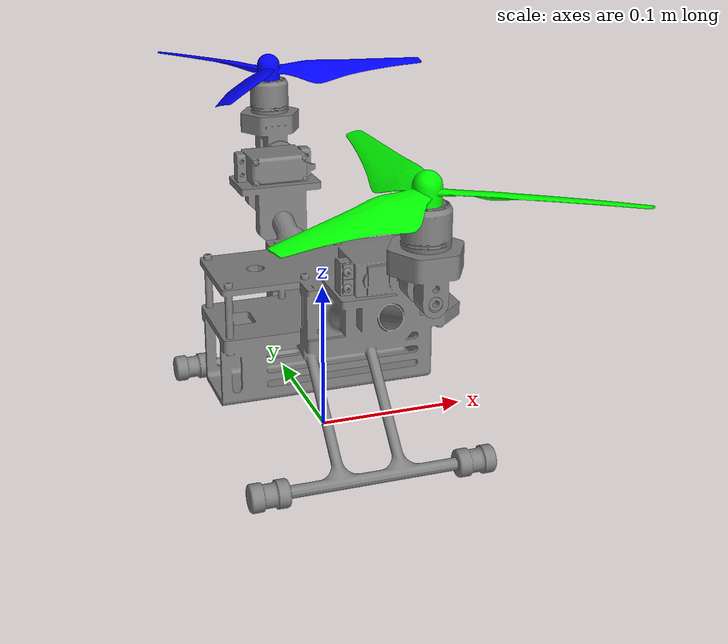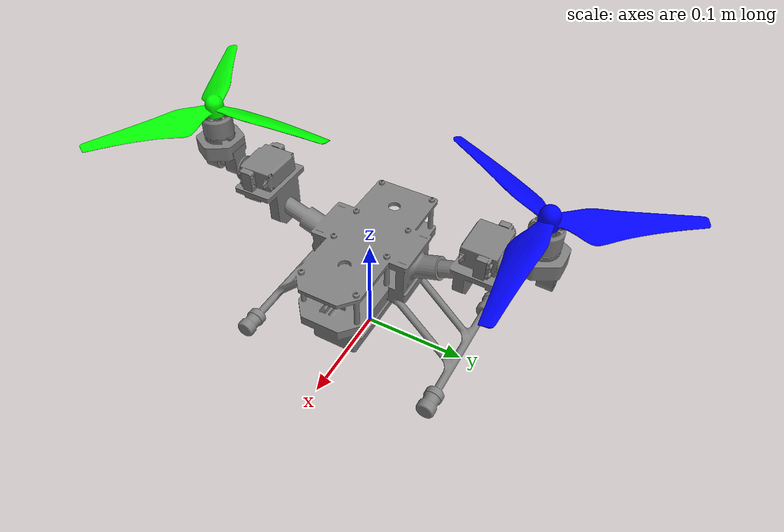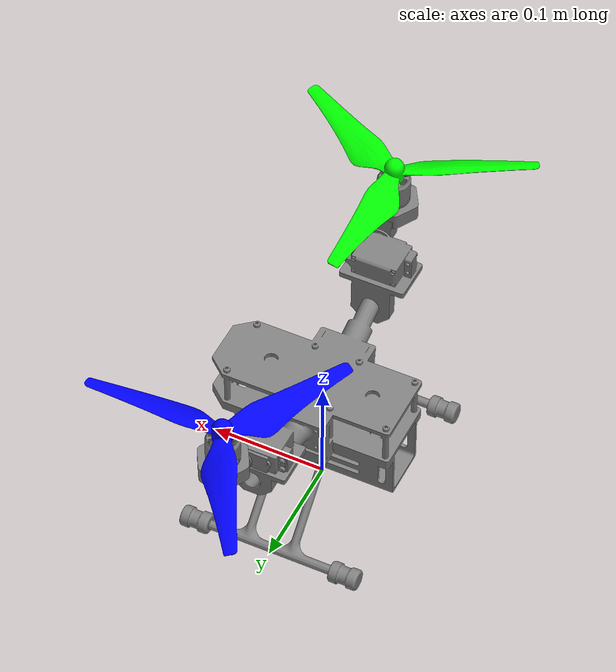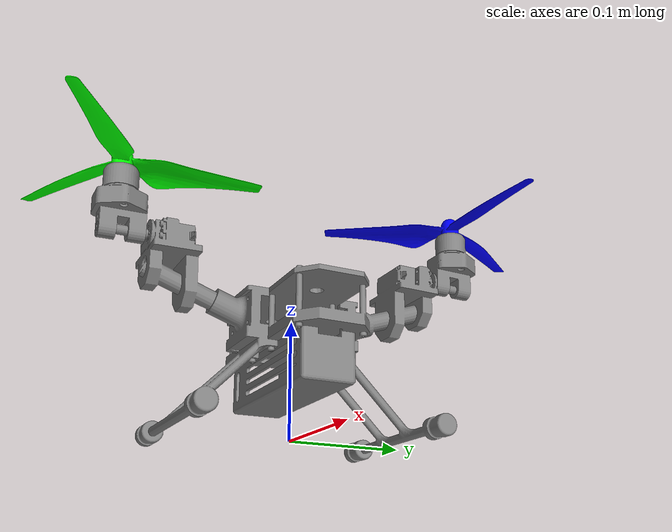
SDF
<?xml version="1.0"?>
<sdf version="1.9">
  <model name="bicopter">
    <pose>0 0 0 0 0 0</pose>
    <link name="base_link">
      <inertial>
        <pose>0.0047 0 0.08 0 0 0</pose>
        <mass>0.40</mass>
        <inertia>
          <ixx>0.000813333</ixx>
          <ixy>0</ixy>
          <ixz>0</ixz>
          <iyy>0.001186667</iyy>
          <iyz>0</iyz>
          <izz>0.001333333</izz>
        </inertia>
      </inertial>
      <sensor name="magnetometer_sensor" type="magnetometer">
        <pose>0 0 0.08 0 0 0</pose>
        <always_on>1</always_on>
        <update_rate>50</update_rate>
      </sensor>
      <sensor name="navsat_sensor" type="gps">
        <pose>0 0 0.08 0 0 0</pose>
        <always_on>1</always_on>
        <update_rate>10</update_rate>
        <gps>
          <position_sdn_stddev>0.0001 0.0001 0.0001</position_sdn_stddev>
          <velocity_sdn_stddev>0.01 0.01 0.01</velocity_sdn_stddev>
          <satellites_visible>10</satellites_visible>
        </gps>
      </sensor>
      <collision name="collision">
        <geometry>
          <mesh>
            <scale>1 1 1</scale>
            <uri>model://bicopter/meshes/base.stl</uri>
          </mesh>
        </geometry>
        <!--
          Collision approximation:
        -->
        <surface>
          <friction>
            <ode>
              <mu>1.0</mu>
              <mu2>1.0</mu2>
            </ode>
          </friction>
        </surface>
      </collision>
      <visual name="visual">
        <geometry>
          <mesh>
            <scale>1 1 1</scale>
            <uri>model://bicopter/meshes/base.stl</uri>
          </mesh>
        </geometry>
        <material>
          <ambient>0.5 0.5 0.5 1</ambient>
          <diffuse>0.5 0.5 0.5 1</diffuse>
          <specular>0.1 0.1 0.1 1</specular>
        </material>
      </visual>
    </link>

    <!-- left servo (ccw) -->
    <link name="ccw_servo_link">
      <pose relative_to="ccw_servo_joint">0 0 0 0 0 0</pose>
      <inertial>
        <pose>0 0 0 0 0 0</pose>
        <mass>0.050</mass>
        <inertia>
          <ixx>8.33333E-06</ixx>
          <ixy>0</ixy>
          <ixz>0</ixz>
          <iyy>5.41667E-06</iyy>
          <iyz>0</iyz>
          <izz>1.04167E-05</izz>
        </inertia>
      </inertial>
      <collision name="collision">
        <geometry>
          <mesh>
            <scale>1 1 1</scale>
            <uri>model://bicopter/meshes/ccw_servo.stl</uri>
          </mesh>
        </geometry>
      </collision>
      <visual name="visual">
        <geometry>
          <mesh>
            <scale>1 1 1</scale>
            <uri>model://bicopter/meshes/ccw_servo.stl</uri>
          </mesh>
        </geometry>
        <material>
          <ambient>0.5 0.5 0.5</ambient>
          <diffuse>0.5 0.5 0.5</diffuse>
          <specular>0.1 0.1 0.1 1</specular>
        </material>
      </visual>
    </link>
    <joint name="ccw_servo_joint" type="revolute">
      <pose relative_to="base_link">0.010312 0.15468 0.15176 0.018488 0 3.14159</pose>
      <parent>base_link</parent>
      <child>ccw_servo_link</child>
      <axis>
        <xyz>0 -1 0</xyz>
        <limit>
          <lower>-0.785398163</lower>
          <upper>0.785398163</upper>
        </limit>
        <dynamics>
          <damping>0.01</damping>
        </dynamics>
      </axis>
    </joint>

    <!-- left motor (ccw) -->
    <link name="ccw_mot_link">
      <pose relative_to="ccw_mot_joint">0 0 0 0 0 0</pose>
      <inertial>
        <pose>7e-06 -1.2e-05 0.017767 0 0 0</pose>
        <mass>0.050</mass>
        <inertia>
          <ixx>1.19292E-05</ixx>
          <ixy>0</ixy>
          <ixz>0</ixz>
          <iyy>1.19292E-05</iyy>
          <iyz>0</iyz>
          <izz>0.000018225</izz>
          </inertia>
      </inertial>
      <collision name="collision">
        <geometry>
          <mesh>
            <scale>1 1 1</scale>
            <uri>model://bicopter/meshes/ccw_mot.stl</uri>
          </mesh>
        </geometry>
      </collision>
      <visual name="visual">
        <geometry>
          <mesh>
            <scale>1 1 1</scale>
            <uri>model://bicopter/meshes/ccw_mot.stl</uri>
          </mesh>
        </geometry>
        <material>
          <ambient>0 0 1 1</ambient>
          <diffuse>0 0 1 1</diffuse>
          <specular>0.1 0.1 0.1 1</specular>
        </material>
      </visual>
    </link>
    <joint name="ccw_mot_joint" type="revolute">
      <pose relative_to="ccw_servo_link">0 -0.004 0.0425 0 0 0</pose>
      <parent>ccw_servo_link</parent>
      <child>ccw_mot_link</child>
      <axis>
        <xyz>0 0 -1</xyz>
        <limit>
          <lower>-1e+16</lower>
          <upper>1e+16</upper>
        </limit>
        <dynamics>
          <damping>0.004</damping>
        </dynamics>
      </axis>
    </joint>

    <!-- right servo (cw) -->
    <link name="cw_servo_link">
      <pose relative_to="cw_servo_joint">0 0 0 0 0 0</pose>
      <inertial>
        <pose>0 0 0 0 0 0</pose>
        <mass>0.050</mass>
        <inertia>
          <ixx>8.33333E-06</ixx>
          <ixy>0</ixy>
          <ixz>0</ixz>
          <iyy>5.41667E-06</iyy>
          <iyz>0</iyz>
          <izz>1.04167E-05</izz>
        </inertia>
      </inertial>
      <collision name="collision">
        <geometry>
          <mesh>
            <scale>1 1 1</scale>
            <uri>model://bicopter/meshes/cw_servo.stl</uri>
          </mesh>
        </geometry>
      </collision>
      <visual name="visual">
        <geometry>
          <mesh>
            <scale>1 1 1</scale>
            <uri>model://bicopter/meshes/cw_servo.stl</uri>
          </mesh>
        </geometry>
        <material>
          <ambient>0.5 0.5 0.5</ambient>
          <diffuse>0.5 0.5 0.5</diffuse>
          <specular>0.1 0.1 0.1 1</specular>
        </material>
      </visual>
    </link>
    <joint name="cw_servo_joint" type="revolute">
      <pose relative_to="base_link">0.010312 -0.14923 0.15181 -0.018488 0 -3.14159</pose>
      <parent>base_link</parent>
      <child>cw_servo_link</child>
      <axis>
        <xyz>0 1 0</xyz>
        <limit>
          <lower>-0.785398163</lower>
          <upper>0.785398163</upper>
        </limit>
        <dynamics>
          <damping>0.01</damping>
        </dynamics>
      </axis>
    </joint>

    <!-- right motor (cw) -->
    <link name="cw_mot_link">
      <pose relative_to="cw_mot_joint">0 0 0 0 0 0</pose>
      <inertial>
        <pose>0 9e-06 0.017847 0 0 0</pose>
        <mass>0.050</mass>
        <inertia>
          <ixx>1.19292E-05</ixx>
          <ixy>0</ixy>
          <ixz>0</ixz>
          <iyy>1.19292E-05</iyy>
          <iyz>0</iyz>
          <izz>0.000018225</izz>
        </inertia>
      </inertial>
      <collision name="collision">
        <geometry>
          <mesh>
            <scale>1 1 1</scale>
            <uri>model://bicopter/meshes/cw_mot.stl</uri>
          </mesh>
        </geometry>
      </collision>
      <visual name="visual">
        <geometry>
          <mesh>
            <scale>1 1 1</scale>
            <uri>model://bicopter/meshes/cw_mot.stl</uri>
          </mesh>
        </geometry>
        <material>
          <ambient>0 1 0</ambient>
          <diffuse>0 1 0</diffuse>
          <specular>0.1 0.1 0.1 1.0</specular>
        </material>
      </visual>
      </link>
    <joint name="cw_mot_joint" type="revolute">
      <pose relative_to="cw_servo_link">0 0.003829 0.041455 0 0 0</pose>
      <parent>cw_servo_link</parent>
      <child>cw_mot_link</child>
      <axis>
        <xyz>0 0 -1</xyz>
        <limit>
          <lower>-1e+16</lower>
          <upper>1e+16</upper>
        </limit>
        <dynamics>
          <damping>0.004</damping>
        </dynamics>
      </axis>
    </joint>

    <!-- sensors -->
    <link name="imu_link">
      <pose>0 0 0.08 0 0 0</pose>
      <inertial>
        <mass>0.05</mass>
        <inertia>
          <ixx>1.33333E-05</ixx>
          <ixy>0</ixy>
          <ixz>0</ixz>
          <iyy>1.33333E-05</iyy>
          <iyz>0</iyz>
          <izz>1.33333E-05</izz>
        </inertia>
      </inertial>
      <sensor name="imu_sensor" type="imu">
        <pose degrees="true">0 0 0 180 0 0</pose>
        <always_on>1</always_on>
        <update_rate>1000.0</update_rate>
      </sensor>
    </link>
    <joint name="imu_joint" type="revolute">
      <child>imu_link</child>
      <parent>base_link</parent>
      <axis>
        <xyz>0 0 1</xyz>
        <limit>
          <lower>0</lower>
          <upper>0</upper>
        </limit>
        <dynamics>
          <damping>1.0</damping>
        </dynamics>
      </axis>
    </joint>

    <!-- plugins -->
    <plugin name="gz::sim::systems::JointStatePublisher"
        filename="gz-sim-joint-state-publisher-system">
    </plugin>

    <!-- left servo (ccw prop) -->

    <!-- right servo (cw prop) -->

    <!-- left motor (ccw prop) -->

    <!-- right motor (cw prop) -->

    <!-- prop left (ccw) lift-drag -->
    <plugin name="gz::sim::systems::LiftDrag"
      filename="gz-sim-lift-drag-system">
      <a0>0.3</a0>
      <alpha_stall>1.4</alpha_stall>
      <cla>4.2500</cla>
      <cda>0.10</cda>
      <cma>0.0</cma>
      <cla_stall>-0.025</cla_stall>
      <cda_stall>0.0</cda_stall>
      <cma_stall>0.0</cma_stall>
      <area>0.002</area>
      <air_density>1.2041</air_density>
      <cp>0.084 0 0</cp>
      <forward>0 1 0</forward>
      <upward>0 0 1</upward>
      <link_name>ccw_mot_link</link_name>
    </plugin>
    <plugin name="gz::sim::systems::LiftDrag"
      filename="gz-sim-lift-drag-system">
      <a0>0.3</a0>
      <alpha_stall>1.4</alpha_stall>
      <cla>4.2500</cla>
      <cda>0.10</cda>
      <cma>0.0</cma>
      <cla_stall>-0.025</cla_stall>
      <cda_stall>0.0</cda_stall>
      <cma_stall>0.0</cma_stall>
      <area>0.002</area>
      <air_density>1.2041</air_density>
      <cp>-0.042 0.072746134 0</cp>
      <forward>-0.866025404 -0.5 0</forward>
      <upward>0 0 1</upward>
      <link_name>ccw_mot_link</link_name>
    </plugin>
    <plugin name="gz::sim::systems::LiftDrag"
      filename="gz-sim-lift-drag-system">
      <a0>0.3</a0>
      <alpha_stall>1.4</alpha_stall>
      <cla>4.2500</cla>
      <cda>0.10</cda>
      <cma>0.0</cma>
      <cla_stall>-0.025</cla_stall>
      <cda_stall>0.0</cda_stall>
      <cma_stall>0.0</cma_stall>
      <area>0.002</area>
      <air_density>1.2041</air_density>
      <cp>-0.042 -0.072746134 0</cp>
      <forward>0.866025404 -0.5 0</forward>
      <upward>0 0 1</upward>
      <link_name>ccw_mot_link</link_name>
    </plugin>

    <!-- prop right (ccw) lift-drag -->
    <plugin name="gz::sim::systems::LiftDrag"
      filename="gz-sim-lift-drag-system">
      <a0>0.3</a0>
      <alpha_stall>1.4</alpha_stall>
      <cla>4.2500</cla>
      <cda>0.10</cda>
      <cma>0.0</cma>
      <cla_stall>-0.025</cla_stall>
      <cda_stall>0.0</cda_stall>
      <cma_stall>0.0</cma_stall>
      <area>0.002</area>
      <air_density>1.2041</air_density>
      <cp>0.084 0 0</cp>
      <forward>0 -1 0</forward>
      <upward>0 0 1</upward>
      <link_name>cw_mot_link</link_name>
    </plugin>
    <plugin name="gz::sim::systems::LiftDrag"
      filename="gz-sim-lift-drag-system">
      <a0>0.3</a0>
      <alpha_stall>1.4</alpha_stall>
      <cla>4.2500</cla>
      <cda>0.10</cda>
      <cma>0.0</cma>
      <cla_stall>-0.025</cla_stall>
      <cda_stall>0.0</cda_stall>
      <cma_stall>0.0</cma_stall>
      <area>0.002</area>
      <air_density>1.2041</air_density>
      <cp>-0.042 0.072746134 0</cp>
      <forward>0.866025404 0.5 0</forward>
      <upward>0 0 1</upward>
      <link_name>cw_mot_link</link_name>
    </plugin>
    <plugin name="gz::sim::systems::LiftDrag"
      filename="gz-sim-lift-drag-system">
      <a0>0.3</a0>
      <alpha_stall>1.4</alpha_stall>
      <cla>4.2500</cla>
      <cda>0.10</cda>
      <cma>0.0</cma>
      <cla_stall>-0.025</cla_stall>
      <cda_stall>0.0</cda_stall>
      <cma_stall>0.0</cma_stall>
      <area>0.002</area>
      <air_density>1.2041</air_density>
      <cp>-0.042 0.072746134 0</cp>
      <forward>-0.866025404 0.5 0</forward>
      <upward>0 0 1</upward>
      <link_name>cw_mot_link</link_name>
    </plugin>

  </model>
</sdf>
